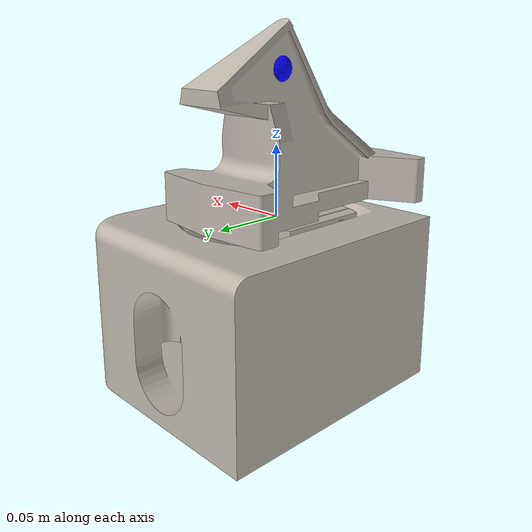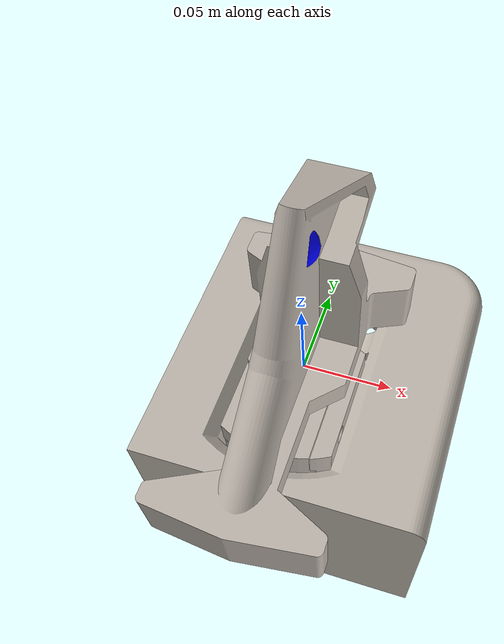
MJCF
<mujoco model="twist_lock">
  <asset>
    <mesh file="../meshes/custom/block1_12.stl" name="twist_lock_casing_mesh_1"/>
    <mesh file="../meshes/custom/block2_12.stl" name="twist_lock_casing_mesh_2"/>
    <mesh file="../meshes/custom/twistlock_12.stl" name="twist_lock_lock_mesh"/>
    <texture file="../../textures/metal.png" type="cube" name="metal" />
    <material name="MatMetal" texture="metal" specular="1" shininess="0.3" />
    <mesh file="../meshes/custom/container_12.stl" name="container_mesh"/>
    <texture file="../../textures/bread.png" type="cube" name="breadmetal" />
    <material name="BreadMetal" texture="breadmetal" specular="1" shininess="0.3" />
  </asset>
    <worldbody>
      <body>
        <body name="object">
          <!-- container -->
          <body name="container">
            <geom pos="0 0 0" mesh="container_mesh" type="mesh" conaffinity="0" contype="0" material="BreadMetal" group="1" name="container_vis"/>
            <geom pos="0 0 0" mesh="container_mesh" type="mesh" conaffinity="0" contype="1" material="BreadMetal" group="0" name="container_col"/>
          </body>
          <!-- twist_lock -->
          <body name="twistlock" pos="0 0 0">
            <joint name="z_slide" type="slide" pos="0 0 0" axis="0 0 1" range="0 1" damping="0" frictionloss="0.1" limited="true"/>
            <body name="casing">
                <inertial pos="0 0 0" mass="1.0" diaginertia="1 1 0.001" />
                <geom pos="0 0 0" mesh="twist_lock_casing_mesh_1" type="mesh" conaffinity="0" contype="0" group="1" material="MatMetal" name="casing_1_vis"/>
                <geom pos="0 0 0" mesh="twist_lock_casing_mesh_1" type="mesh" solimp="0.998 0.998 0.001" solref="0.02 1" conaffinity="0" contype="1" density="100" friction="0.95 0.3 0.1" group="0" condim="4" name="casing_1_col"/>
                <geom pos="0 0 0" mesh="twist_lock_casing_mesh_2" type="mesh" conaffinity="0" contype="0" group="1" material="MatMetal" name="casing_2_vis"/>
                <geom pos="0 0 0" mesh="twist_lock_casing_mesh_2" type="mesh" solimp="0.998 0.998 0.001" solref="0.02 1" conaffinity="0" contype="1" density="100" friction="0.95 0.3 0.1" group="0" condim="4" name="casing_2_col"/>
            </body>
            <body name="lock" pos="0 0 0">
                <inertial pos="0 0 0" mass="1.0" diaginertia="1 1 0.001" />
                <joint name="lock_joint" pos="0 0 0" axis="0 0 1" range="-1.57 0" damping="0" frictionloss="0.1" limited="true"/>
                <geom pos="0 0 0" mesh="twist_lock_lock_mesh" type="mesh" conaffinity="0" contype="0" group="1" material="MatMetal" name="lock_vis"/>
                <geom pos="0 0 0" mesh="twist_lock_lock_mesh" type="mesh" solimp="0.998 0.998 0.001" solref="0.02 1" conaffinity="0" contype="1" density="100" friction="0.95 0.3 0.1" group="0" condim="4" name="lock_col"/>
                <site name="handle" pos="0 0 0.1" size="0.01 0.01 0.01" rgba="0 0 1 1" group="1" type="sphere" />
            </body>
          </body>
        </body>
        <site name="bottom_site" pos="0 0 0" rgba="0 0 0 0" size="0.005"/>
        <site name="top_site" pos="0 0 0" rgba="0 0 0 0" size="0.005"/>
        <site name="horizontal_radius_site" pos="0 0 0" rgba="0 0 0 0" size="0.1"/>
      </body>
    </worldbody>
</mujoco>
